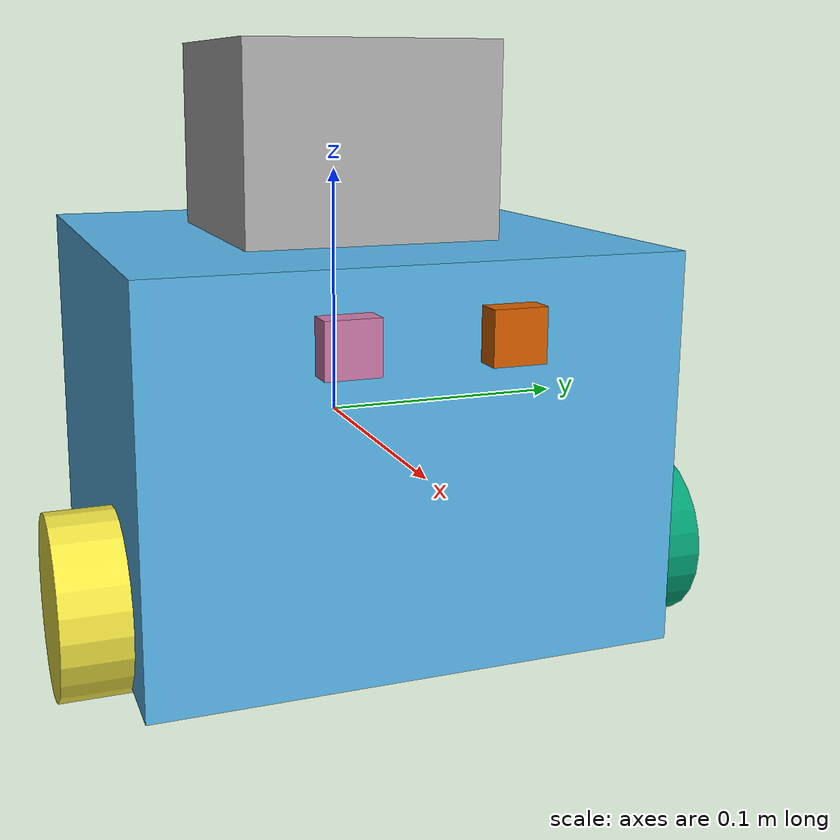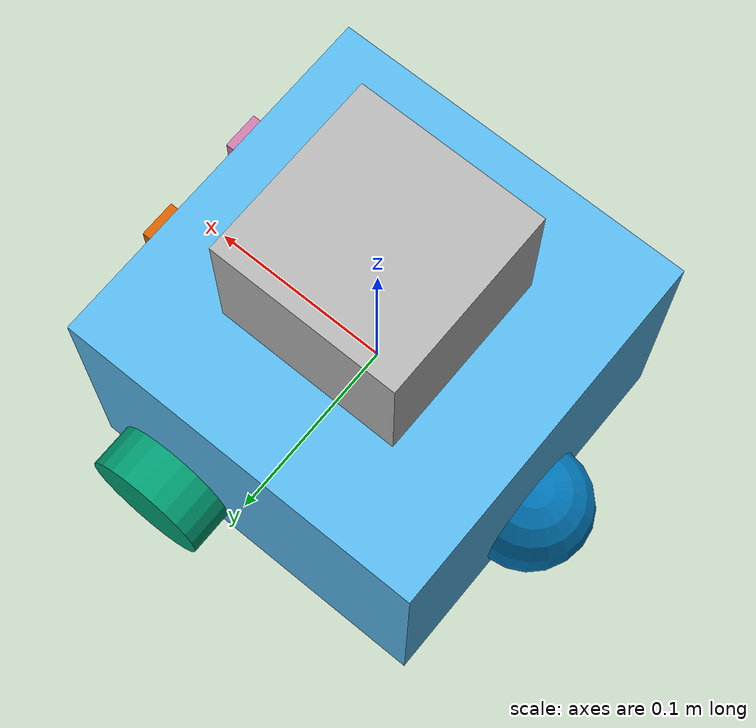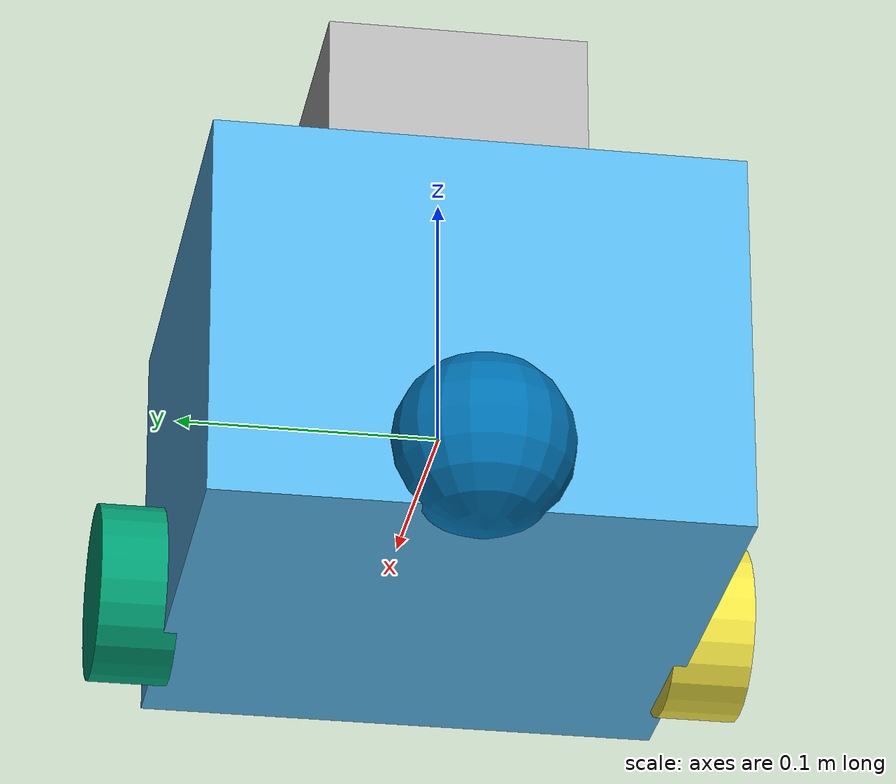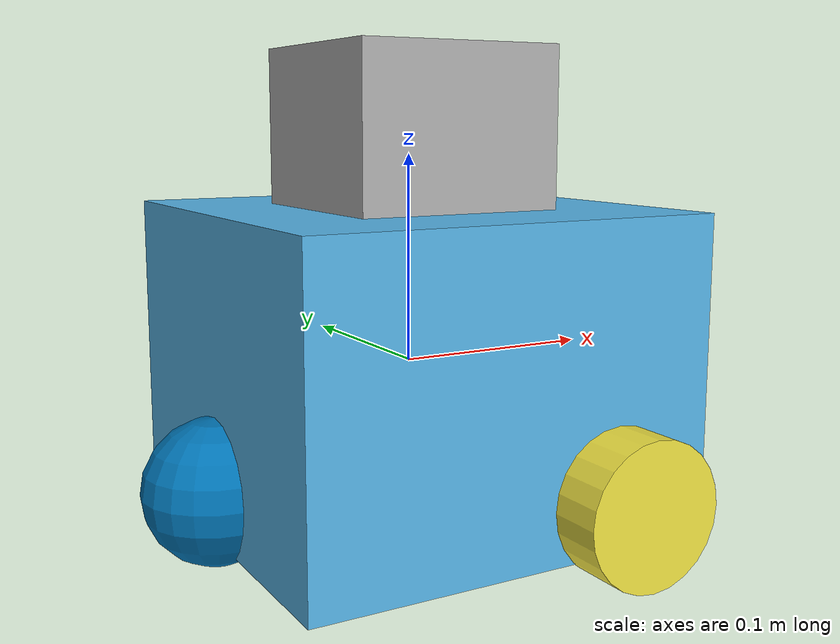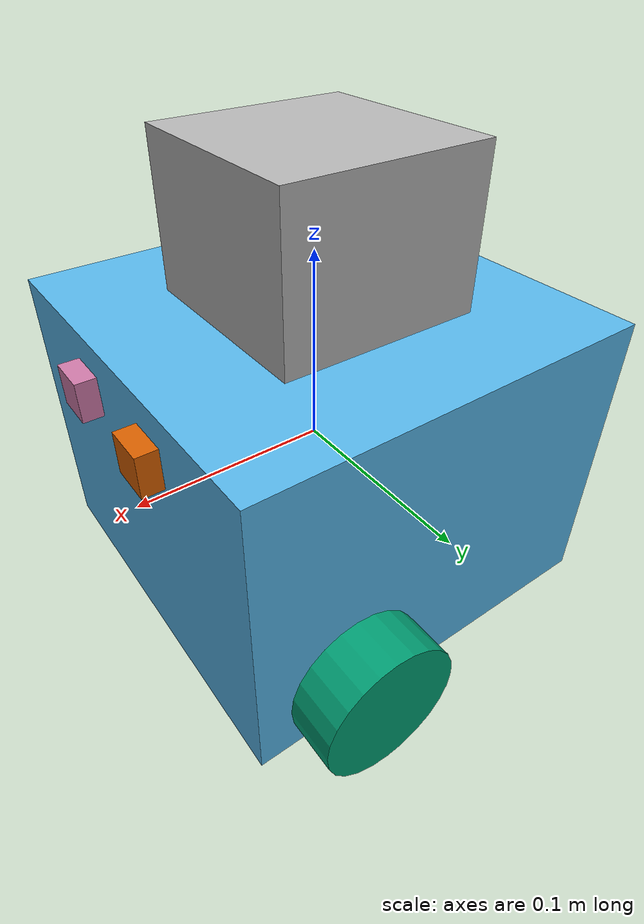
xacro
<?xml version="1.0"?>
<robot name="diff_drive" xmlns:xacro="http://www.ros.org/wiki/xacro">

  <xacro:property name="is_sim" value="$(arg sim_mode)" />

  <ros2_control name="IgnitionSystem" type="system">
    <xacro:if value="${is_sim==True}">
      <hardware>
        <plugin>gz_ros2_control/GazeboSimSystem</plugin>
      </hardware>
    </xacro:if>
    <xacro:if value="${is_sim==False}">
      <hardware>
        <plugin>hardware_link2/HardwareLinkInterface</plugin>
        <param name="device">/dev/serial/by-id/usb-1a86_USB_Serial-if00-port0</param>
        <param name="baud_rate">115200</param>
        <param name="timeout_ms">1000</param>
      </hardware>
    </xacro:if>

    <joint name="left_wheel_joint">
      <command_interface name="velocity">
        <param name="min">-1</param>
        <param name="max">1</param>
      </command_interface>
      <state_interface name="position"/>
      <state_interface name="velocity"/>
    </joint>
    <joint name="right_wheel_joint">
      <command_interface name="velocity">
        <param name="min">-1</param>
        <param name="max">1</param>
      </command_interface>
      <state_interface name="position"/>
      <state_interface name="velocity"/>
    </joint>
  </ros2_control>

  <gazebo>
    <plugin filename="gz_ros2_control-system" name="gz_ros2_control::GazeboSimROS2ControlPlugin">
      <parameters>/root/data/project_ws/src/ros_gz_example_bringup/config/diff_drive_controller_velocity.yaml</parameters>
    </plugin>
    <plugin
      filename="gz-sim-imu-system"
      name="gz::sim::systems::Imu">
    </plugin>
    <plugin
      filename="gz-sim-magnetometer-system"
      name="gz::sim::systems::Magnetometer">
    </plugin>
  </gazebo>

  <link name="base_link">
  </link>

  <link name="chassis_link">
    <origin rpy="0 0 0" xyz="0 0 0"/>
    <inertial>
      <mass value="1"/>
      <inertia ixx="0.009375" ixy="0" ixz="0" iyy="0.015" iyz="0" izz="0.009375"/>
    </inertial>
    <visual>
      <geometry>
        <box size="0.2 0.2 0.15"/>
      </geometry>
      <gazebo>
        <material>
          <ambient>0.5 0.5 1.0 1</ambient>
          <diffuse>0.5 0.5 1.0 1</diffuse>
          <specular>0.0 0.0 1.0 1</specular>
        </material>
      </gazebo>
    </visual>
    <collision name='collision_chassis'>
      <geometry>
        <box size="0.2 0.2 0.15"/>
      </geometry>
    </collision>
  </link>

  <joint name="base_joint" type="fixed">
    <parent link="base_link"/>
    <child link="chassis_link"/>
    <origin rpy="0 0 0" xyz="0 0 0"/>
  </joint>

  <link name="left_wheel">
    <origin rpy="-1.5707 0 0" xyz="0.05 0.11 -0.05"/>
    <inertial>
      <mass value="0.3"/>
      <inertia ixx="0.0012" ixy="0" ixz="0" iyy="0.0012" iyz="0" izz="0.0012"/>
    </inertial>
    <visual>
      <geometry>
        <cylinder length="0.03" radius="0.034"/>
      </geometry>
      <gazebo>
        <material>
          <ambient>0.2 0.2 0.2 1</ambient>
          <diffuse>0.2 0.2 0.2 1</diffuse>
          <specular>0.2 0.2 0.2 1</specular>
        </material>
      </gazebo>
    </visual>
    <collision name='collision_left_wheel'>
      <geometry>
        <cylinder length="0.02677" radius="0.033685"/>
      </geometry>
    </collision>
    <gazebo reference="left_wheel">
      <surface>
        <friction>
          <ode>
            <mu>0.8</mu>
            <mu2>0.9</mu2>
            <slip1>0.3</slip1>  <!-- Longitudinal slip -->
            <slip2>0.1</slip2>  <!-- Lateral slip -->
          </ode>
        </friction>
      </surface>
    </gazebo>
  </link>

  <joint name="left_wheel_joint" type="continuous">
    <parent link="base_link"/>
    <child link="left_wheel"/>
    <axis xyz="0 0 1"/>
    <origin rpy="-1.5707 0 0" xyz="0.05 0.11 -0.05"/>
    <dynamics damping="0.2"/>
  </joint>

  <link name="right_wheel">
    <origin rpy="-1.5707 0 0" xyz="0.05 -0.11 -0.05"/>
    <inertial>
      <mass value="0.3"/>
      <inertia ixx="0.0012" ixy="0" ixz="0" iyy="0.0012" iyz="0" izz="0.0012"/>
    </inertial>
    <visual>
      <geometry>
        <cylinder length="0.03" radius="0.034"/>
      </geometry>
      <gazebo>
        <material>
          <ambient>0.2 0.2 0.2 1</ambient>
          <diffuse>0.2 0.2 0.2 1</diffuse>
          <specular>0.2 0.2 0.2 1</specular>
        </material>
      </gazebo>
    </visual>
    <collision name='collision_right_wheel'>
      <geometry>
        <cylinder length="0.02677" radius="0.033685"/>
      </geometry>
    </collision>
    <gazebo reference="right_wheel">
      <surface>
        <friction>
          <ode>
            <mu>0.8</mu>
            <mu2>0.9</mu2>
            <slip1>0.35</slip1>  <!-- Longitudinal slip -->
            <slip2>0.1</slip2>  <!-- Lateral slip -->
          </ode>
        </friction>
      </surface>
    </gazebo>
  </link>

  <joint name="right_wheel_joint" type="continuous">
    <parent link="base_link"/>
    <child link="right_wheel"/>
    <axis xyz="0 0 1"/>
    <origin rpy="-1.5707 0 0" xyz="0.05 -0.11 -0.05"/>
    <dynamics damping="0.2"/>
  </joint>

  <link name="caster">
    <origin rpy="0 0 0" xyz="-0.10 0 -0.05"/>
    <inertial>
      <mass value="0.005"/>
      <inertia ixx="0.00001" ixy="0" ixz="0" iyy="0.00001" iyz="0" izz="0.00001"/>
    </inertial>
    <visual>
      <geometry>
        <sphere radius="0.034"/>
      </geometry>
      <gazebo>
        <material>
          <ambient>0.2 0.2 0.2 1</ambient>
          <diffuse>0.2 0.2 0.2 1</diffuse>
          <specular>0.2 0.2 0.2 1</specular>
        </material>
      </gazebo>
    </visual>
    <collision name='collision_caster'>
      <geometry>
        <sphere radius="0.034"/>
      </geometry>
    </collision>
    <gazebo reference="caster">
      <surface>
        <friction>
          <ode>
            <mu>0.0</mu>
            <mu2>0.0</mu2>
          </ode>
        </friction>
      </surface>
    </gazebo>
  </link>

  <joint name="caster_wheel" type="fixed">
    <parent link="base_link"/>
    <child link="caster"/>
    <origin rpy="0 0 0" xyz="-0.10 0 -0.05"/>
  </joint>

  <link name="camera_left_link">
    <origin rpy="0 0 0" xyz="0.10 0.03 0.05"/>
    <inertial>
      <mass value="0.1"/>
      <inertia ixx="0.000166667" iyy="0.000166667" izz="0.000166667" ixy="0" ixz="0" iyz="0"/>
    </inertial>
    <visual>
      <geometry>
        <box size="0.02 0.02 0.02"/>
      </geometry>
      <gazebo>
        <material>
          <ambient>0 0 0 1</ambient>
          <diffuse>0 0 0 1</diffuse>
          <specular>0 0 0 1</specular>
        </material>
      </gazebo>
    </visual>
    <collision name="collision">
      <geometry>
        <box size="0.02 0.02 0.02"/>
      </geometry>
    </collision>
  </link>

  <gazebo reference="camera_left_link">
        <sensor name="wide_angle_camera_left" type="wideanglecamera">
          <camera>
            <horizontal_fov>3.14</horizontal_fov>
            <image>
              <width>1280</width>
              <height>720</height>
            </image>
            <clip>
              <near>0.1</near>
              <far>100</far>
            </clip>
            <lens>
              <type>custom</type>
              <custom_function>
                <c1>1.05</c1>
                <c2>4</c2>
                <f>1.0</f>
                <fun>tan</fun>
              </custom_function>
              <scale_to_hfov>true</scale_to_hfov>
              <cutoff_angle>3.1415</cutoff_angle>
              <env_texture_size>1024</env_texture_size>
            </lens>
          </camera>
          <always_on>1</always_on>
          <update_rate>10</update_rate>
          <visualize>1</visualize>
          <topic>camera_left</topic>
        </sensor>
  </gazebo>

  <joint name="camera_left_joint" type="fixed">
    <parent link="base_link"/>
    <child link="camera_left_link"/>
    <origin rpy="0 0 0" xyz="0.10 0.03 0.05"/>
  </joint>

  <link name="camera_right_link">
    <origin rpy="0 0 0" xyz="0.10 -0.03 0.05"/>
    <inertial>
      <mass value="0.1"/>
      <inertia ixx="0.000166667" iyy="0.000166667" izz="0.000166667" ixy="0" ixz="0" iyz="0"/>
    </inertial>
    <visual>
      <geometry>
        <box size="0.02 0.02 0.02"/>
      </geometry>
      <gazebo>
        <material>
          <ambient>0 0 0 1</ambient>
          <diffuse>0 0 0 1</diffuse>
          <specular>0 0 0 1</specular>
        </material>
      </gazebo>
    </visual>
    <collision name="collision">
      <geometry>
        <box size="0.02 0.02 0.02"/>
      </geometry>
    </collision>
  </link>

  <gazebo reference="camera_right_link">
        <sensor name="wide_angle_camera_right" type="wideanglecamera">
          <camera>
            <horizontal_fov>3.14</horizontal_fov>
            <image>
              <width>1280</width>
              <height>720</height>
            </image>
            <clip>
              <near>0.1</near>
              <far>100</far>
            </clip>
            <lens>
              <type>custom</type>
              <custom_function>
                <c1>1.05</c1>
                <c2>4</c2>
                <f>1.0</f>
                <fun>tan</fun>
              </custom_function>
              <scale_to_hfov>true</scale_to_hfov>
              <cutoff_angle>3.1415</cutoff_angle>
              <env_texture_size>1024</env_texture_size>
            </lens>
          </camera>
          <always_on>1</always_on>
          <update_rate>10</update_rate>
          <visualize>1</visualize>
          <topic>camera_right</topic>
        </sensor>
  </gazebo>

  <joint name="camera_right_joint" type="fixed">
    <parent link="base_link"/>
    <child link="camera_right_link"/>
    <origin rpy="0 0 0" xyz="0.10 -0.03 0.05"/>
  </joint>

  <link name="lidar_link">
    <origin rpy="0 0 3.14" xyz="0 0 0.1"/>
    <inertial>
      <mass value="0.1"/>
      <inertia ixx="0.000166667" iyy="0.000166667" izz="0.000166667" ixy="0" ixz="0" iyz="0"/>
    </inertial>
    <visual>
      <geometry>
        <box size="0.1 0.1 0.1"/>
      </geometry>
    </visual>
    <collision name="collision">
      <geometry>
        <box size="0.1 0.1 0.1"/>
      </geometry>
    </collision>
  </link>

  <gazebo reference="lidar_link">
        <sensor name='gpu_lidar' type='gpu_lidar'>
          <pose>0 0 0 0 0 0</pose>
          <topic>scan</topic>
          <gz_frame_id>lidar_link</gz_frame_id>
          <update_rate>10</update_rate>
          <lidar>
            <scan>
              <horizontal>
                <samples>800</samples>
                <resolution>1</resolution>
                <min_angle>-3.1415926536</min_angle>
                <max_angle>+3.1415926536</max_angle>
              </horizontal>
              <vertical>
                <samples>1</samples>
                <resolution>1</resolution>
                <min_angle>0.0</min_angle>
                <max_angle>0.0</max_angle>
              </vertical>
            </scan>
            <range>
              <min>0.08</min>
              <max>12.0</max>
              <resolution>0.01</resolution>
            </range>
            <noise>
              <type>gaussian</type>
              <mean>0.0</mean>
              <stddev>0.01</stddev>
            </noise>
          </lidar>
          <visualize>true</visualize>
        </sensor>
  </gazebo>

  <joint name="lidar_joint" type="fixed">
    <parent link="base_link"/>
    <child link="lidar_link"/>
    <origin rpy="0 0 3.14" xyz="0 0 0.1"/>
  </joint>

  <link name="imu_link">
    <origin rpy="0 0 0" xyz="0 0 0"/>
    <inertial>
      <mass value="0.001"/>
      <inertia ixx="1.67e-10" iyy="1.67e-10" izz="1.67e-10" ixy="0" ixz="0" iyz="0"/>    </inertial>
    <visual>
      <geometry>
        <box size="0.001 0.001 0.001"/>
      </geometry>
    </visual>
    <collision name="collision">
      <geometry>
        <box size="0.001 0.001 0.001"/>
      </geometry>
    </collision>
  </link>

  <gazebo reference="imu_link">
    <sensor name="imu_sensor" type="imu">
      <always_on>1</always_on>
      <update_rate>100</update_rate>
      <visualize>true</visualize>
      <topic>imu</topic>
      <enable_metrics>true</enable_metrics>
      <gz_frame_id>imu_link</gz_frame_id>
    </sensor>
  </gazebo>

  <joint name="imu_joint" type="fixed">
    <parent link="base_link"/>
    <child link="imu_link"/>
    <origin rpy="0 0 0" xyz="0 0 0"/>
  </joint>

  <link name="magnetometer_link">
    <origin rpy="0 0 0" xyz="0 0 0"/>
    <inertial>
      <mass value="0.001"/>
      <inertia ixx="1.67e-10" iyy="1.67e-10" izz="1.67e-10" ixy="0" ixz="0" iyz="0"/>    </inertial>
    <visual>
      <geometry>
        <box size="0.001 0.001 0.001"/>
      </geometry>
    </visual>
    <collision name="collision">
      <geometry>
        <box size="0.001 0.001 0.001"/>
      </geometry>
    </collision>
  </link>

  <gazebo reference="magnetometer_link">
    <sensor name="magnetometer" type="magnetometer">
      <always_on>1</always_on>
      <update_rate>100</update_rate>
      <visualize>true</visualize>
      <topic>magnetometer</topic>
      <gz_frame_id>magnetometer_link</gz_frame_id>
      <enable_metrics>true</enable_metrics>
    </sensor>
  </gazebo>

  <joint name="magnetometer_joint" type="fixed">
    <parent link="base_link"/>
    <child link="magnetometer_link"/>
    <origin rpy="0 0 0" xyz="0 0 0"/>
  </joint>

</robot>
